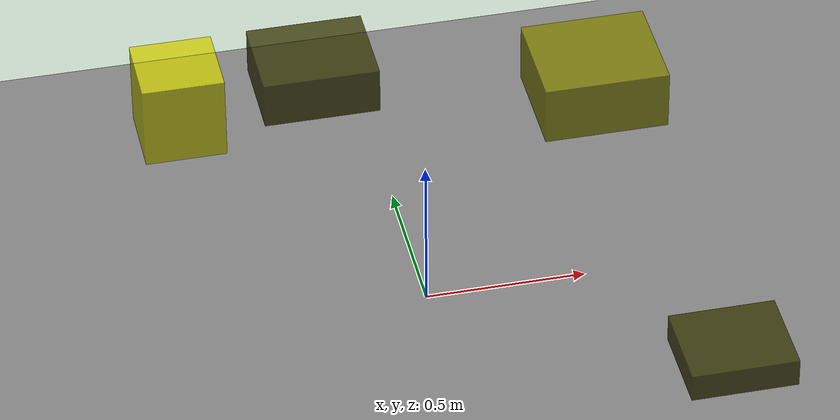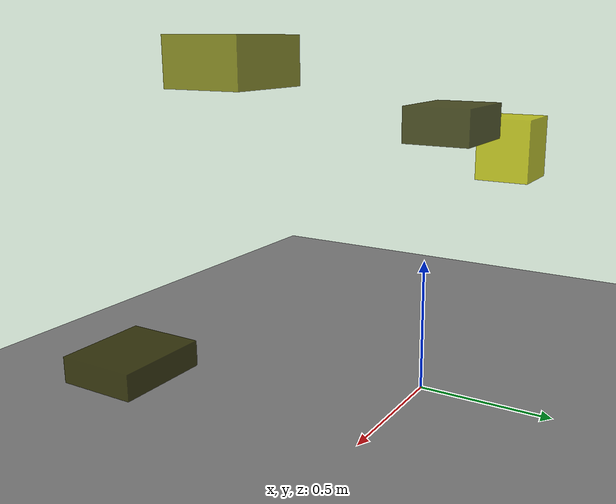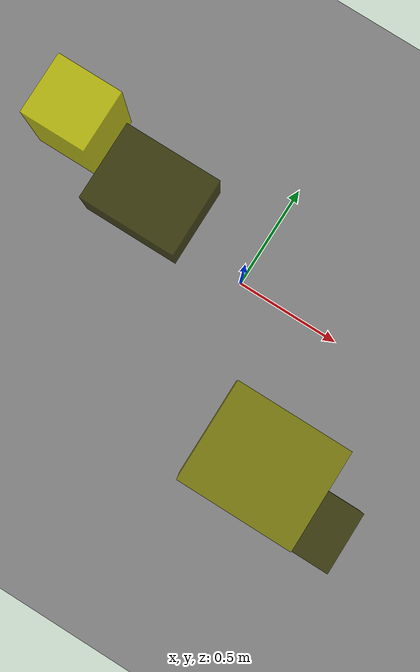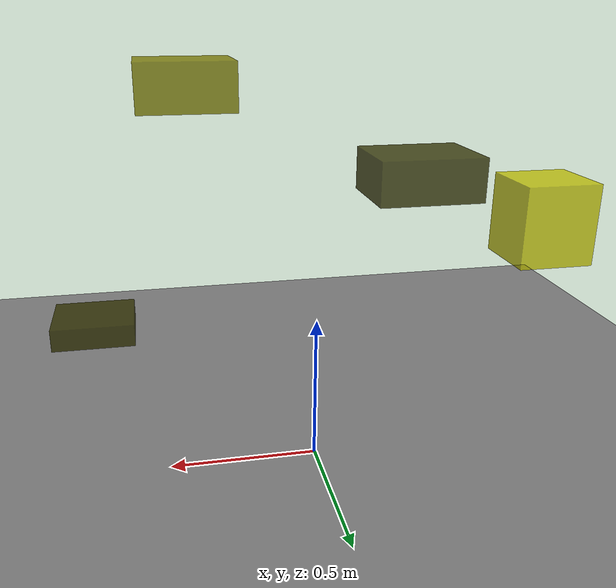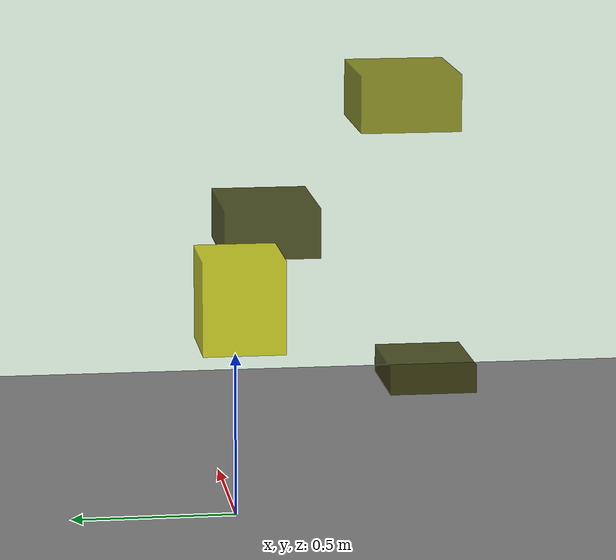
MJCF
<?xml version="1.0"?>
<mujoco model="obstacle_scene">
  <compiler angle="radian" coordinate="local"/>
  <option timestep="0.001" gravity="0 0 -9.81"/>

  <asset>
    <material name="obstacle_mat" rgba="0.8 0.8 0.0 0.8"/>
    <material name="ground_mat" rgba="0.5 0.5 0.5 1"/>
  </asset>

  <worldbody>
    <!-- Ground plane -->
    <geom name="ground" type="plane" size="3 3 0.1" material="ground_mat"/>

    <!-- Obstacles -->
    <body name="obstacle_0" pos="0.769977 -0.711546 0.241870">
      <geom name="obs_0" type="box" size="0.162320 0.140572 0.045072" rgba="0.2 0.2 0.0 0.8"/>
    </body>
    <body name="obstacle_1" pos="0.368499 -0.559742 1.214013">
      <geom name="obs_1" type="box" size="0.177116 0.153753 0.087489" rgba="0.5 0.5 0.0 0.8"/>
    </body>
    <body name="obstacle_2" pos="-0.725429 0.071012 0.834219">
      <geom name="obs_2" type="box" size="0.120807 0.114175 0.131013" rgba="0.8 0.8 0.0 0.8"/>
    </body>
    <body name="obstacle_3" pos="-0.343218 -0.047748 0.968891">
      <geom name="obs_3" type="box" size="0.170055 0.136812 0.071208" rgba="0.2 0.2 0.0 0.8"/>
    </body>
  </worldbody>
</mujoco>
